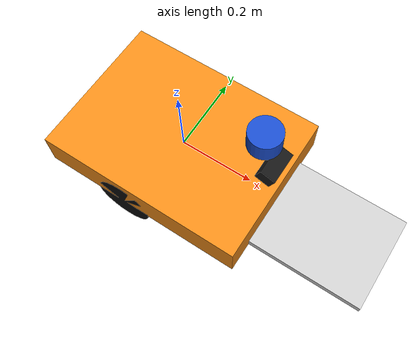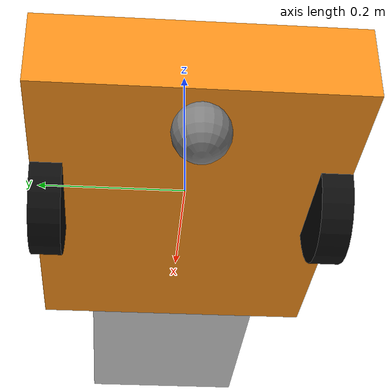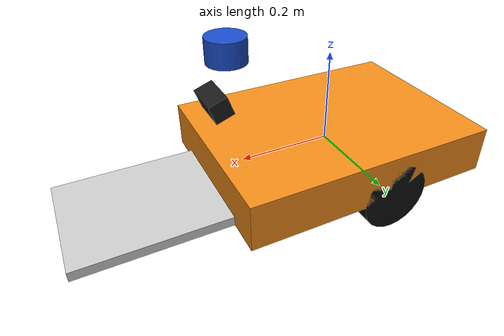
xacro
<?xml version="1.0"?>
<robot name="cargobot" xmlns:xacro="http://www.ros.org/wiki/xacro">

  <xacro:property name="base_w" value="0.40"/>      <!-- genişlik -->
  <xacro:property name="base_l" value="0.55"/>      <!-- uzunluk -->
  <xacro:property name="base_h" value="0.10"/>      <!-- yükseklik -->
  <xacro:property name="wheel_r" value="0.075"/>    <!-- tahrik tekerlek yarıçap -->
  <xacro:property name="wheel_w" value="0.04"/>
  <xacro:property name="wheel_sep" value="0.36"/>   <!-- iki tahrik arası -->
  <xacro:property name="caster_r" value="0.035"/>
  <xacro:property name="lidar_h" value="0.20"/>     <!-- LIDAR montaj yüksekliği -->
  <xacro:property name="fork_len" value="0.30"/>

  <!-- ============ INERTIAL HELPER ============ -->
  <xacro:macro name="box_inertia" params="m x y z">
    <inertial>
      <mass value="${m}"/>
      <inertia ixx="${m*(y*y+z*z)/12}" iyy="${m*(x*x+z*z)/12}" izz="${m*(x*x+y*y)/12}"
               ixy="0" ixz="0" iyz="0"/>
    </inertial>
  </xacro:macro>

  <xacro:macro name="cyl_inertia" params="m r h">
    <inertial>
      <mass value="${m}"/>
      <inertia ixx="${m*(3*r*r+h*h)/12}" iyy="${m*(3*r*r+h*h)/12}" izz="${m*r*r/2}"
               ixy="0" ixz="0" iyz="0"/>
    </inertial>
  </xacro:macro>

  <!-- ============ BASE ============ -->
  <link name="base_link">
    <visual>
      <geometry><box size="${base_l} ${base_w} ${base_h}"/></geometry>
      <material name="orange"><color rgba="0.95 0.55 0.10 1"/></material>
    </visual>
    <collision>
      <geometry><box size="${base_l} ${base_w} ${base_h}"/></geometry>
    </collision>
    <xacro:box_inertia m="8.0" x="${base_l}" y="${base_w}" z="${base_h}"/>
  </link>

  <!-- ============ TEKERLEKLER ============ -->
  <xacro:macro name="drive_wheel" params="prefix y_off">
    <link name="${prefix}_wheel">
      <visual>
        <origin xyz="0 0 0" rpy="${pi/2} 0 0"/>
        <geometry><cylinder radius="${wheel_r}" length="${wheel_w}"/></geometry>
        <material name="black"><color rgba="0.05 0.05 0.05 1"/></material>
      </visual>
      <collision>
        <origin xyz="0 0 0" rpy="${pi/2} 0 0"/>
        <geometry><cylinder radius="${wheel_r}" length="${wheel_w}"/></geometry>
        <surface>
          <friction><ode><mu>1.2</mu><mu2>1.0</mu2></ode></friction>
        </surface>
      </collision>
      <xacro:cyl_inertia m="0.6" r="${wheel_r}" h="${wheel_w}"/>
    </link>
    <joint name="${prefix}_wheel_joint" type="continuous">
      <parent link="base_link"/>
      <child link="${prefix}_wheel"/>
      <origin xyz="-0.05 ${y_off} ${-base_h/2}" rpy="0 0 0"/>
      <axis xyz="0 1 0"/>
    </joint>
  </xacro:macro>

  <xacro:drive_wheel prefix="left"  y_off=" ${wheel_sep/2}"/>
  <xacro:drive_wheel prefix="right" y_off="-${wheel_sep/2}"/>

  <xacro:macro name="caster" params="prefix x_off">
    <link name="${prefix}_caster">
      <visual>
        <geometry><sphere radius="${caster_r}"/></geometry>
        <material name="gray"><color rgba="0.5 0.5 0.5 1"/></material>
      </visual>
      <collision>
        <geometry><sphere radius="${caster_r}"/></geometry>
        <surface><friction><ode><mu>0.05</mu><mu2>0.05</mu2></ode></friction></surface>
      </collision>
      <inertial><mass value="0.1"/><inertia ixx="1e-4" iyy="1e-4" izz="1e-4" ixy="0" ixz="0" iyz="0"/></inertial>
    </link>
    <joint name="${prefix}_caster_joint" type="fixed">
      <parent link="base_link"/>
      <child link="${prefix}_caster"/>
      <origin xyz="${x_off} 0 ${-base_h/2 - caster_r + 0.001}" rpy="0 0 0"/>
    </joint>
  </xacro:macro>
  <xacro:caster prefix="rear" x_off="-${base_l/2 - caster_r}"/>

  <!-- ============ LIDAR ============ -->
  <link name="lidar_link">
    <visual>
      <geometry><cylinder radius="0.04" length="0.05"/></geometry>
      <material name="blue"><color rgba="0.1 0.3 0.8 1"/></material>
    </visual>
    <collision>
      <geometry><cylinder radius="0.04" length="0.05"/></geometry>
    </collision>
    <xacro:cyl_inertia m="0.2" r="0.04" h="0.05"/>
  </link>
  <joint name="lidar_joint" type="fixed">
    <parent link="base_link"/>
    <child link="lidar_link"/>
    <origin xyz="${base_l/2 - 0.05} 0 ${base_h/2 + lidar_h}" rpy="0 0 0"/>
  </joint>

  <!-- ============ KAMERA ============ -->
  <link name="camera_link">
    <visual>
      <geometry><box size="0.04 0.08 0.04"/></geometry>
      <material name="dark"><color rgba="0.1 0.1 0.1 1"/></material>
    </visual>
  </link>
  <joint name="camera_joint" type="fixed">
    <parent link="base_link"/>
    <child link="camera_link"/>
    <!-- Forklift çatalına bakacak şekilde öne eğimli -->
    <origin xyz="${base_l/2 - 0.02} 0 ${base_h/2 + 0.10}" rpy="0 0.35 0"/>
  </joint>

  <!-- ============ FORKLIFT ============ -->
  <link name="fork_lift">
    <visual>
      <geometry><box size="${fork_len} 0.25 0.02"/></geometry>
      <material name="silver"><color rgba="0.8 0.8 0.8 1"/></material>
    </visual>
    <collision>
      <geometry><box size="${fork_len} 0.25 0.02"/></geometry>
    </collision>
    <xacro:box_inertia m="1.0" x="${fork_len}" y="0.25" z="0.02"/>
  </link>
  <joint name="fork_lift_joint" type="prismatic">
    <parent link="base_link"/>
    <child link="fork_lift"/>
    <origin xyz="${base_l/2 + fork_len/2} 0 ${-base_h/2 + 0.01}" rpy="0 0 0"/>
    <axis xyz="0 0 1"/>
    <limit lower="0.0" upper="0.15" effort="100" velocity="0.1"/>
  </joint>

  <!-- ============ GAZEBO PLUGIN'LERİ ============ -->

  <!-- Diferansiyel sürüş -->
  <gazebo>
    <plugin name="diff_drive" filename="libgazebo_ros_diff_drive.so">
      <ros><namespace>/</namespace></ros>
      <update_rate>50</update_rate>
      <left_joint>left_wheel_joint</left_joint>
      <right_joint>right_wheel_joint</right_joint>
      <wheel_separation>${wheel_sep}</wheel_separation>
      <wheel_diameter>${2*wheel_r}</wheel_diameter>
      <max_wheel_torque>20</max_wheel_torque>
      <max_wheel_acceleration>2.0</max_wheel_acceleration>
      <command_topic>cmd_vel</command_topic>
      <publish_odom>true</publish_odom>
      <publish_odom_tf>true</publish_odom_tf>
      <publish_wheel_tf>true</publish_wheel_tf>
      <odometry_topic>odom</odometry_topic>
      <odometry_frame>odom</odometry_frame>
      <robot_base_frame>base_link</robot_base_frame>
    </plugin>
  </gazebo>

  <!-- 2D LIDAR -->
  <gazebo reference="lidar_link">
    <sensor type="ray" name="lidar">
      <pose>0 0 0 0 0 0</pose>
      <visualize>true</visualize>
      <update_rate>10</update_rate>
      <ray>
        <scan><horizontal>
          <samples>360</samples><resolution>1</resolution>
          <min_angle>-3.14159</min_angle><max_angle>3.14159</max_angle>
        </horizontal></scan>
        <range><min>0.12</min><max>12.0</max><resolution>0.01</resolution></range>
      </ray>
      <plugin name="lidar_plugin" filename="libgazebo_ros_ray_sensor.so">
        <ros><namespace>/</namespace><remapping>~/out:=scan</remapping></ros>
        <output_type>sensor_msgs/LaserScan</output_type>
        <frame_name>lidar_link</frame_name>
      </plugin>
    </sensor>
  </gazebo>

  <!-- RGB kamera -->
  <gazebo reference="camera_link">
    <sensor type="camera" name="camera">
      <update_rate>15</update_rate>
      <camera>
        <horizontal_fov>1.2</horizontal_fov>
        <image><width>640</width><height>480</height><format>R8G8B8</format></image>
        <clip><near>0.05</near><far>10</far></clip>
      </camera>
      <plugin name="camera_plugin" filename="libgazebo_ros_camera.so">
        <ros><namespace>/camera</namespace></ros>
        <camera_name>color</camera_name>
        <frame_name>camera_link</frame_name>
      </plugin>
    </sensor>
  </gazebo>

</robot>
